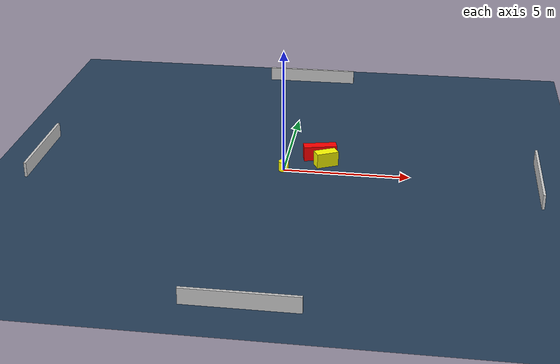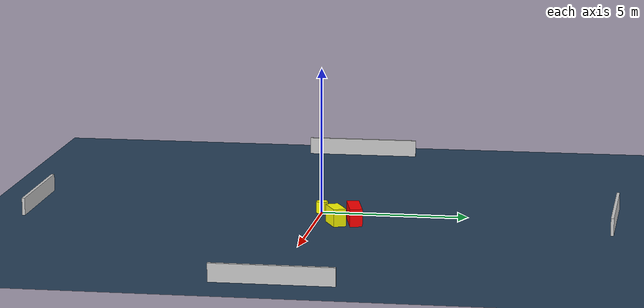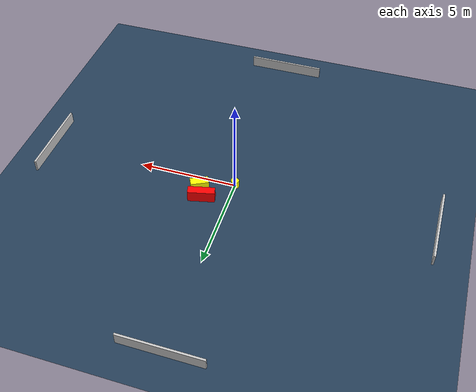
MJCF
<?xml version="1.0" ?>
<mujoco model="generated_environment">
  <option timestep="0.01" integrator="RK4" cone="elliptic"/>
  <default>
    <geom density="1"/>
  </default>
  <asset>
    <texture builtin="gradient" height="3072" name="skybox" rgb1="0.3 0.5 0.7" rgb2="0 0 0" type="skybox" width="512"/>
    <texture builtin="checker" height="300" name="groundplane" rgb1="0.2 0.3 0.4" rgb2="0.1 0.2 0.3" type="2d" width="300"/>
    <material name="groundplane" reflectance="0.2" texrepeat="5 5" texture="groundplane"/>
  </asset>
  <worldbody>
    <light dir="0 0 -1" directional="true" pos="0 0 1.5"/>
    <geom condim="3" friction="0.5 0.005 0.001" material="groundplane" name="floor" pos="0 0 0" size="0 0 0.05" type="plane"/>
    <body name="walls">
      <geom name="wall_1" condim="4" pos="-10.0 0.0 0.3" rgba="0.800000011920929 0.800000011920929 0.800000011920929 1.0" size="0.05 2.0 0.3" type="box"/>
      <geom name="wall_2" condim="4" pos="10.0 0.0 0.3" rgba="0.800000011920929 0.800000011920929 0.800000011920929 1.0" size="0.05 2.0 0.3" type="box"/>
      <geom name="wall_3" condim="4" pos="0.0 -10.0 0.3" rgba="0.800000011920929 0.800000011920929 0.800000011920929 1.0" size="2.0 0.05 0.3" type="box"/>
      <geom name="wall_4" condim="4" pos="0.0 10.0 0.3" rgba="0.800000011920929 0.800000011920929 0.800000011920929 1.0" size="2.0 0.05 0.3" type="box"/>
    </body>
    <body name="robot">
      <joint name="joint_x" type="slide" pos="0 0 0" axis="1 0 0"/>
      <joint name="joint_y" type="slide" pos="0 0 0" axis="0 1 0"/>
      <geom name="robot" type="cylinder" pos="0.0 0.0 0.2" size="0.2 0.2 0.0" mass="5.0" friction="1.0 0.005 0.0001" condim="4" rgba="1.0 1.0 0.0 1.0"/>
    </body>
    <body name="obstacle_1_movable">
      <geom name="obstacle_1_movable" condim="4" pos="1.6222394847434254 0.7202012814632303 0.3" euler="0 0 26.489918884121785" friction="0.0 0.005 0.001" rgba="1.0 1.0 0.0 1.0" size="0.45064841737781025 0.21674975732224921 0.3" type="box" mass="0.1"/>
      <joint type="free"/>
    </body>
    <body name="obstacle_2_static">
      <geom name="obstacle_2_static" condim="4" pos="1.3138090195582417 1.3096026028459613 0.3" euler="0 0 13.207692843494886" friction="0.0 0.005 0.001" rgba="1.0 0.0 0.0 1.0" size="0.670099963031472 0.21080590763697524 0.3" type="box"/>
    </body>
  </worldbody>
  <actuator>
    <motor name="actuator_x" joint="joint_x" gear="1" ctrlrange="-1 1"/>
    <motor name="actuator_y" joint="joint_y" gear="1" ctrlrange="-1 1"/>
  </actuator>
</mujoco>
